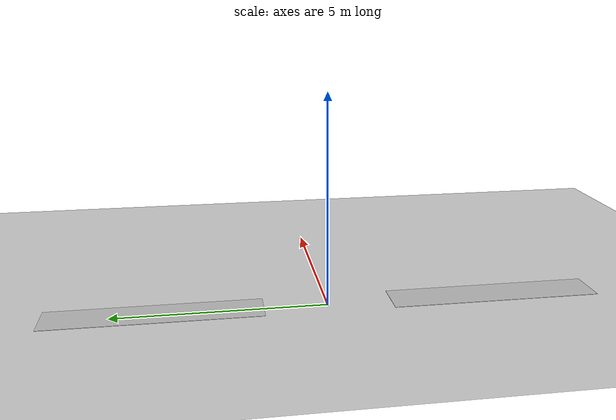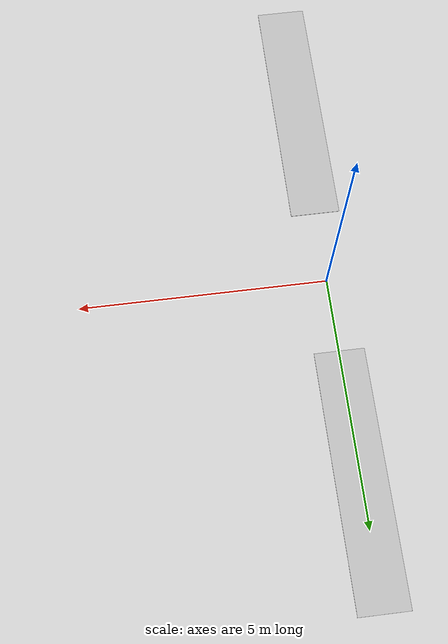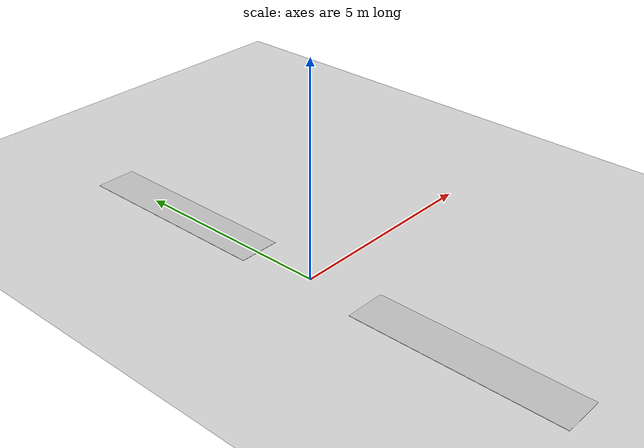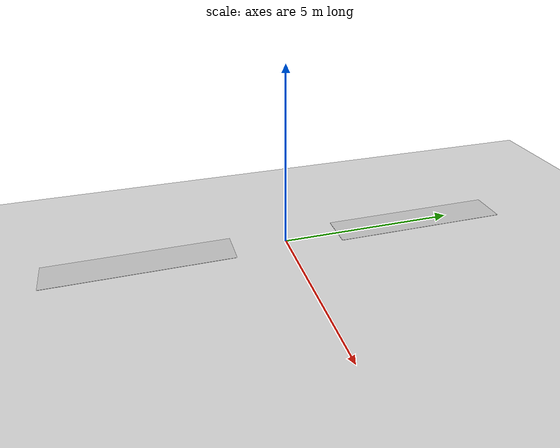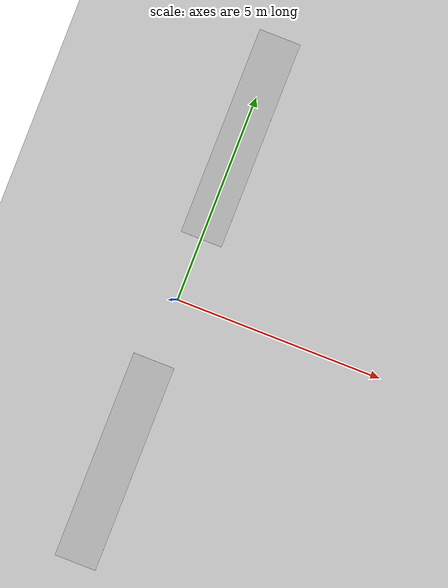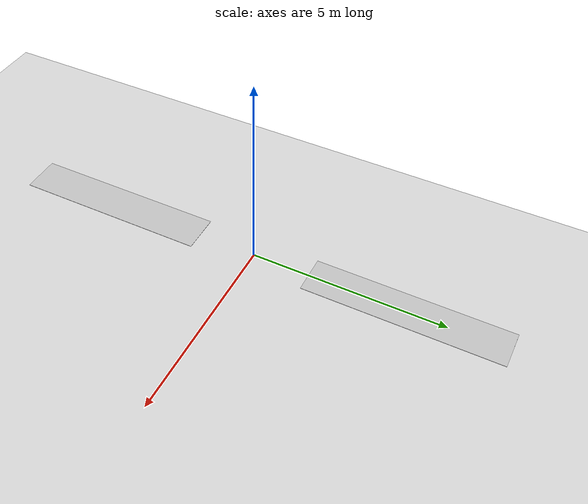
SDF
<?xml version="1.0" ?>
<sdf version="1.5">
  <world name="default">
   <light type="directional" name="sun">
      <cast_shadows>false</cast_shadows>
      <pose>0 0 100 0 0 0</pose>
      <diffuse>0.8 0.8 0.8 1</diffuse>
      <specular>0.9 0.9 0.9 1</specular>
      <attenuation>
        <range>1000</range>
        <constant>0.9</constant>
        <linear>0.01</linear>
        <quadratic>0.001</quadratic>
      </attenuation>
      <direction>0.2 0.2 -0.9</direction>
    </light>

    <!-- A ground plane -->
    <include>
      <uri>model://ground_plane</uri>
    </include>

    <!-- 初始视角 -->
    <gui fullscreen='0'>
      <camera name='user_camera'>
        <pose>-11.0 0.0 7.0 0 0.57 0.0</pose>
        <view_controller>orbit</view_controller>
      </camera>
    </gui>

    <physics type='ode'>
      <gravity>0 0 -9.8066</gravity>
      <ode>
        <solver>
          <type>quick</type>
          <iters>150</iters>
          <sor>1.3</sor>
          <use_dynamic_moi_rescaling>0</use_dynamic_moi_rescaling>
        </solver>
        <constraints>
          <cfm>0.00001</cfm>
          <erp>0.2</erp>
          <contact_max_correcting_vel>1000</contact_max_correcting_vel>
          <contact_surface_layer>0.01</contact_surface_layer>
        </constraints>
      </ode>
      <max_step_size>0.004</max_step_size>
      <real_time_factor>1000.0</real_time_factor>
      <real_time_update_rate>250</real_time_update_rate>
      <magnetic_field>6.0e-6 2.3e-5 -4.2e-5</magnetic_field>
    </physics>

    <!-- 装饰 -->
    <model name='texture'>
      <static>true</static>
      <!-- 地板 -->
      <!-- 后墙徽章 -->
      <!-- 前墙海报 -->
      <!-- 左墙海报 -->
      <link name="jky_word">
        <pose>-0.0 -4.0 0.05 0 0 0</pose>
        <visual name="visual">
          <cast_shadows>false</cast_shadows>
          <geometry>
            <box>
              <size>1.0 5.0 0.01</size>
            </box>
          </geometry>
          <material>
            <script>
              <uri>model://texture_CXY/texture.material</uri>
              <name>cxy</name>
            </script>
          </material>
        </visual>
      </link>
      <!--　右墙海报 -->
      <link name="sysu_word">
        <pose>-0.0 4.0 0.05 0 0 0</pose>
        <visual name="visual">
          <cast_shadows>false</cast_shadows>
          <geometry>
            <box>
              <size>1.0 5.0 0.01</size>
            </box>
          </geometry>
          <material>
            <script>
              <uri>model://texture_CXY/texture.material</uri>
              <name>xty</name>
            </script>
          </material>
        </visual>
      </link>
    </model>

    </world>
</sdf>
